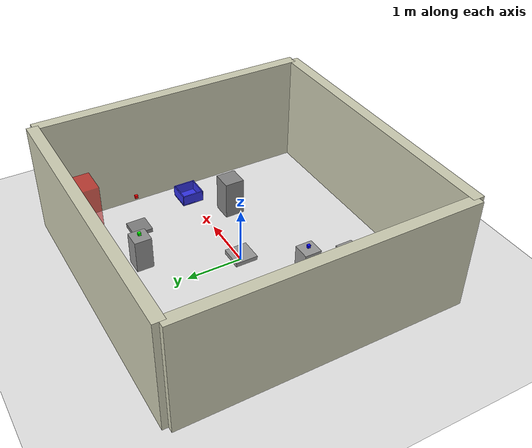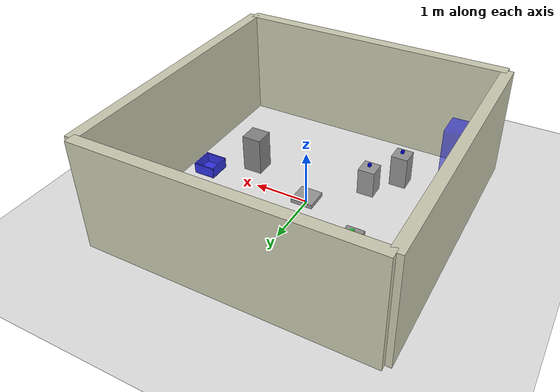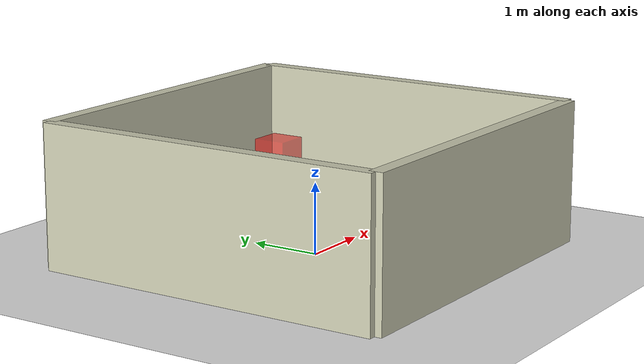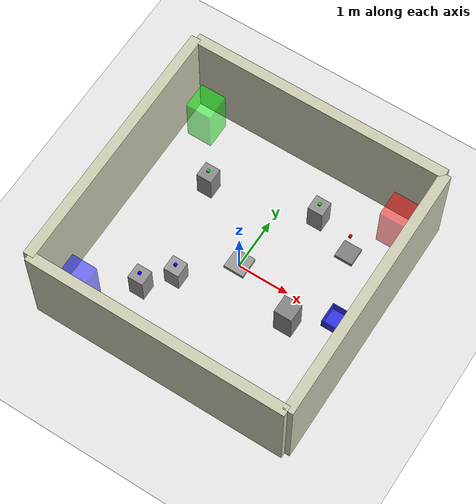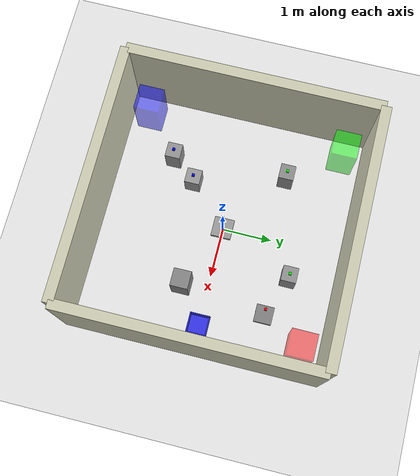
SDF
<?xml version="1.0" ?>
<sdf version="1.8">
  <world name="sorting_room">

    <!-- Physics -->
    <physics name="1ms" type="ignored">
      <max_step_size>0.001</max_step_size>
      <real_time_factor>1.0</real_time_factor>
    </physics>

    <plugin filename="gz-sim-physics-system" name="gz::sim::systems::Physics"></plugin>
    <plugin filename="gz-sim-user-commands-system" name="gz::sim::systems::UserCommands"></plugin>
    <plugin filename="gz-sim-scene-broadcaster-system" name="gz::sim::systems::SceneBroadcaster"></plugin>
    <plugin filename="gz-sim-sensors-system" name="gz::sim::systems::Sensors">
      <render_engine>ogre2</render_engine>
    </plugin>

    <!-- Lighting -->
    <light type="directional" name="sun">
      <cast_shadows>true</cast_shadows>
      <pose>0 0 10 0 0 0</pose>
      <diffuse>0.8 0.8 0.8 1</diffuse>
      <specular>0.2 0.2 0.2 1</specular>
      <direction>-0.5 0.1 -0.9</direction>
    </light>

    <!-- Ground -->
    <model name="ground_plane">
      <static>true</static>
      <link name="link">
        <collision name="collision">
          <geometry>
            <plane>
              <normal>0 0 1</normal>
              <size>100 100</size>
            </plane>
          </geometry>
        </collision>
        <visual name="visual">
          <geometry>
            <plane>
              <normal>0 0 1</normal>
              <size>100 100</size>
            </plane>
          </geometry>
          <material>
            <ambient>0.9 0.9 0.9 1</ambient>
            <diffuse>0.9 0.9 0.9 1</diffuse>
          </material>
        </visual>
      </link>
    </model>

    <!-- ROOM WALLS (5m x 5m room) -->

    <!-- North Wall -->
    <model name="wall_north">
      <pose>0 2.5 1.0 0 0 0</pose>
      <static>true</static>
      <link name="link">
        <collision name="collision">
          <geometry>
            <box><size>5.0 0.2 2.0</size></box>
          </geometry>
        </collision>
        <visual name="visual">
          <geometry>
            <box><size>5.0 0.2 2.0</size></box>
          </geometry>
          <material>
            <ambient>0.8 0.8 0.7 1</ambient>
            <diffuse>0.8 0.8 0.7 1</diffuse>
          </material>
        </visual>
      </link>
    </model>

    <!-- South Wall -->
    <model name="wall_south">
      <pose>0 -2.5 1.0 0 0 0</pose>
      <static>true</static>
      <link name="link">
        <collision name="collision">
          <geometry>
            <box><size>5.0 0.2 2.0</size></box>
          </geometry>
        </collision>
        <visual name="visual">
          <geometry>
            <box><size>5.0 0.2 2.0</size></box>
          </geometry>
          <material>
            <ambient>0.8 0.8 0.7 1</ambient>
            <diffuse>0.8 0.8 0.7 1</diffuse>
          </material>
        </visual>
      </link>
    </model>

    <!-- East Wall -->
    <model name="wall_east">
      <pose>2.5 0 1.0 0 0 0</pose>
      <static>true</static>
      <link name="link">
        <collision name="collision">
          <geometry>
            <box><size>0.2 5.0 2.0</size></box>
          </geometry>
        </collision>
        <visual name="visual">
          <geometry>
            <box><size>0.2 5.0 2.0</size></box>
          </geometry>
          <material>
            <ambient>0.8 0.8 0.7 1</ambient>
            <diffuse>0.8 0.8 0.7 1</diffuse>
          </material>
        </visual>
      </link>
    </model>

    <!-- West Wall -->
    <model name="wall_west">
      <pose>-2.5 0 1.0 0 0 0</pose>
      <static>true</static>
      <link name="link">
        <collision name="collision">
          <geometry>
            <box><size>0.2 5.0 2.0</size></box>
          </geometry>
        </collision>
        <visual name="visual">
          <geometry>
            <box><size>0.2 5.0 2.0</size></box>
          </geometry>
          <material>
            <ambient>0.8 0.8 0.7 1</ambient>
            <diffuse>0.8 0.8 0.7 1</diffuse>
          </material>
        </visual>
      </link>
    </model>

    <!-- RED BASKET (Collection point for red boxes) -->
    <model name="red_basket">
      <pose>2.0 2.0 0.5 0 0 0</pose>
      <static>true</static>
      <link name="link">
        <collision name="collision">
          <geometry>
            <box><size>0.5 0.5 1.0</size></box>
          </geometry>
        </collision>
        <visual name="visual">
          <geometry>
            <box><size>0.5 0.5 1.0</size></box>
          </geometry>
          <material>
            <ambient>1 0 0 0.5</ambient>
            <diffuse>1 0 0 0.5</diffuse>
          </material>
        </visual>
      </link>
    </model>

    <!-- GREEN BASKET -->
    <model name="green_basket">
      <pose>-2.0 2.0 0.5 0 0 0</pose>
      <static>true</static>
      <link name="link">
        <collision name="collision">
          <geometry>
            <box><size>0.5 0.5 1.0</size></box>
          </geometry>
        </collision>
        <visual name="visual">
          <geometry>
            <box><size>0.5 0.5 1.0</size></box>
          </geometry>
          <material>
            <ambient>0 1 0 0.5</ambient>
            <diffuse>0 1 0 0.5</diffuse>
          </material>
        </visual>
      </link>
    </model>

    <!-- BLUE BASKET -->
    <model name="blue_basket">
      <pose>-2.0 -2.0 0.5 0 0 0</pose>
      <static>true</static>
      <link name="link">
        <collision name="collision">
          <geometry>
            <box><size>0.5 0.5 1.0</size></box>
          </geometry>
        </collision>
        <visual name="visual">
          <geometry>
            <box><size>0.5 0.5 1.0</size></box>
          </geometry>
          <material>
            <ambient>0 0 1 0.5</ambient>
            <diffuse>0 0 1 0.5</diffuse>
          </material>
        </visual>
      </link>
    </model>

    <!-- ==================== OBSTACLES ==================== -->

    <!-- Center obstacle (tallest - 0.8m high) -->
    <model name="obstacle_center">
      <pose>0.0 0.0 0.1 0 0 0</pose>
      <static>true</static>
      <link name="link">
        <collision name="collision">
          <geometry>
            <box><size>0.4 0.4 0.075</size></box>
          </geometry>
        </collision>
        <visual name="visual">
          <geometry>
            <box><size>0.4 0.4 0.075</size></box>
          </geometry>
          <material>
            <ambient>0.6 0.6 0.6 1</ambient>
            <diffuse>0.6 0.6 0.6 1</diffuse>
          </material>
        </visual>
      </link>
    </model>

    <!-- Obstacle 2 - Near red basket -->
    <model name="obstacle_2">
      <pose>1.5 1.2 0.1 0 0 0</pose>
      <static>true</static>
      <link name="link">
        <collision name="collision">
          <geometry>
            <box><size>0.35 0.35 0.075</size></box>
          </geometry>
        </collision>
        <visual name="visual">
          <geometry>
            <box><size>0.35 0.35 0.075</size></box>
          </geometry>
          <material>
            <ambient>0.5 0.5 0.5 1</ambient>
            <diffuse>0.5 0.5 0.5 1</diffuse>
          </material>
        </visual>
      </link>
    </model>

    <!-- Obstacle 3 - Near green basket -->
    <model name="obstacle_3">
      <pose>-1.3 1.0 0.3 0 0 0</pose>
      <static>true</static>
      <link name="link">
        <collision name="collision">
          <geometry>
            <box><size>0.3 0.3 0.6</size></box>
          </geometry>
        </collision>
        <visual name="visual">
          <geometry>
            <box><size>0.3 0.3 0.6</size></box>
          </geometry>
          <material>
            <ambient>0.55 0.55 0.55 1</ambient>
            <diffuse>0.55 0.55 0.55 1</diffuse>
          </material>
        </visual>
      </link>
    </model>

    <!-- Obstacle 4 - Near blue basket -->
    <model name="obstacle_4">
      <pose>-1.2 -1.3 0.3 0 0 0</pose>
      <static>true</static>
      <link name="link">
        <collision name="collision">
          <geometry>
            <box><size>0.3 0.3 0.6</size></box>
          </geometry>
        </collision>
        <visual name="visual">
          <geometry>
            <box><size>0.3 0.3 0.6</size></box>
          </geometry>
          <material>
            <ambient>0.58 0.58 0.58 1</ambient>
            <diffuse>0.58 0.58 0.58 1</diffuse>
          </material>
        </visual>
      </link>
    </model>

    <!-- Obstacle 5 - Middle right -->
    <model name="obstacle_5">
      <pose>1.3 -0.5 0.35 0 0 0</pose>
      <static>true</static>
      <link name="link">
        <collision name="collision">
          <geometry>
            <box><size>0.35 0.35 0.7</size></box>
          </geometry>
        </collision>
        <visual name="visual">
          <geometry>
            <box><size>0.35 0.35 0.7</size></box>
          </geometry>
          <material>
            <ambient>0.52 0.52 0.52 1</ambient>
            <diffuse>0.52 0.52 0.52 1</diffuse>
          </material>
        </visual>
      </link>
    </model>

    <!-- Obstacle 6 - Middle left -->
    <model name="obstacle_6">
      <pose>-0.8 -0.8 0.25 0 0 0</pose>
      <static>true</static>
      <link name="link">
        <collision name="collision">
          <geometry>
            <box><size>0.3 0.3 0.5</size></box>
          </geometry>
        </collision>
        <visual name="visual">
          <geometry>
            <box><size>0.3 0.3 0.5</size></box>
          </geometry>
          <material>
            <ambient>0.6 0.6 0.6 1</ambient>
            <diffuse>0.6 0.6 0.6 1</diffuse>
          </material>
        </visual>
      </link>
    </model>

    <!-- Obstacle 7 - Near entrance area -->
    <model name="obstacle_7">
      <pose>0.7 1.5 0.3 0 0 0</pose>
      <static>true</static>
      <link name="link">
        <collision name="collision">
          <geometry>
            <box><size>0.3 0.3 0.6</size></box>
          </geometry>
        </collision>
        <visual name="visual">
          <geometry>
            <box><size>0.3 0.3 0.6</size></box>
          </geometry>
          <material>
            <ambient>0.57 0.57 0.57 1</ambient>
            <diffuse>0.57 0.57 0.57 1</diffuse>
          </material>
        </visual>
      </link>
    </model>

    <!-- ==================== RED BOXES ON OBSTACLES ==================== -->

    <!-- Red box 1 - ON TOP OF CENTER OBSTACLE -->
    <model name="red_box_1">
      <static>false</static>
      <pose>0.0 0.0 0.9 0 0 0</pose>
      <static>false</static>
      <link name="link">
        <inertial>
          <mass>0.1</mass>
          <inertia>
            <ixx>0.00017</ixx>
            <iyy>0.00017</iyy>
            <izz>0.00017</izz>
          </inertia>
        </inertial>
        <collision name="collision">
          <geometry>
            <box><size>0.05 0.05 0.05</size></box>
          </geometry>
        </collision>
        <visual name="visual">
          <geometry>
            <box><size>0.05 0.05 0.05</size></box>
          </geometry>
          <material>
            <ambient>1 0 0 1</ambient>
            <diffuse>1 0 0 1</diffuse>
          </material>
        </visual>
      </link>
    </model>

    <!-- Red box 2 - ON TOP OF OBSTACLE 2 (near red basket) -->
    <model name="red_box_2">
      <static>false</static>
      <pose>1.5 1.2 0.775 0 0 0</pose>
      <static>false</static>
      <link name="link">
        <inertial>
          <mass>0.1</mass>
          <inertia>
            <ixx>0.00017</ixx>
            <iyy>0.00017</iyy>
            <izz>0.00017</izz>
          </inertia>
        </inertial>
        <collision name="collision">
          <geometry>
            <box><size>0.05 0.05 0.05</size></box>
          </geometry>
        </collision>
        <visual name="visual">
          <geometry>
            <box><size>0.05 0.05 0.05</size></box>
          </geometry>
          <material>
            <ambient>1 0 0 1</ambient>
            <diffuse>1 0 0 1</diffuse>
          </material>
        </visual>
      </link>
    </model>

    <!-- ==================== GREEN BOXES ==================== -->

    <!-- ==================== ADDITIONAL COLOURED BOXES ==================== -->

    <!-- Blue box 1 — on obstacle_6 -->
    <model name="blue_box_1">
      <static>false</static>
      <pose>-0.8 -0.8 0.55 0 0 0</pose>
      <static>true</static>
      <link name="link">

        <inertial>
          <mass>0.1</mass>
          <inertia>
            <ixx>0.00017</ixx><ixy>0</ixy><ixz>0</ixz>
            <iyy>0.00017</iyy><iyz>0</iyz>
            <izz>0.00017</izz>
          </inertia>
        </inertial>
        <collision name="collision">
          <geometry><box><size>0.05 0.05 0.05</size></box></geometry>
        </collision>
        <visual name="visual">
          <geometry><box><size>0.05 0.05 0.05</size></box></geometry>
          <material><ambient>0 0 1 1</ambient><diffuse>0 0 1 1</diffuse></material>
        </visual>
      </link>
    </model>

    <!-- Blue box 2 — on obstacle_4 -->
    <model name="blue_box_2">
      <static>false</static>
      <pose>-1.2 -1.3 0.65 0 0 0</pose>
      <static>true</static>
      <link name="link">

        <inertial>
          <mass>0.1</mass>
          <inertia>
            <ixx>0.00017</ixx><ixy>0</ixy><ixz>0</ixz>
            <iyy>0.00017</iyy><iyz>0</iyz>
            <izz>0.00017</izz>
          </inertia>
        </inertial>
        <collision name="collision">
          <geometry><box><size>0.05 0.05 0.05</size></box></geometry>
        </collision>
        <visual name="visual">
          <geometry><box><size>0.05 0.05 0.05</size></box></geometry>
          <material><ambient>0 0 1 1</ambient><diffuse>0 0 1 1</diffuse></material>
        </visual>
      </link>
    </model>

    <!-- Green box 1 — on obstacle_3 -->
    <model name="green_box_1">
      <static>false</static>
      <pose>-1.3 1.0 0.65 0 0 0</pose>
      <static>true</static>
      <link name="link">

        <inertial>
          <mass>0.1</mass>
          <inertia>
            <ixx>0.00017</ixx><ixy>0</ixy><ixz>0</ixz>
            <iyy>0.00017</iyy><iyz>0</iyz>
            <izz>0.00017</izz>
          </inertia>
        </inertial>
        <collision name="collision">
          <geometry><box><size>0.05 0.05 0.05</size></box></geometry>
        </collision>
        <visual name="visual">
          <geometry><box><size>0.05 0.05 0.05</size></box></geometry>
          <material><ambient>0 1 0 1</ambient><diffuse>0 1 0 1</diffuse></material>
        </visual>
      </link>
    </model>

    <!-- Green box 2 — on obstacle_7 -->
    <model name="green_box_2">
      <static>false</static>
      <pose>0.7 1.5 0.65 0 0 0</pose>
      <static>true</static>
      <link name="link">

        <inertial>
          <mass>0.1</mass>
          <inertia>
            <ixx>0.00017</ixx><ixy>0</ixy><ixz>0</ixz>
            <iyy>0.00017</iyy><iyz>0</iyz>
            <izz>0.00017</izz>
          </inertia>
        </inertial>
        <collision name="collision">
          <geometry><box><size>0.05 0.05 0.05</size></box></geometry>
        </collision>
        <visual name="visual">
          <geometry><box><size>0.05 0.05 0.05</size></box></geometry>
          <material><ambient>0 1 0 1</ambient><diffuse>0 1 0 1</diffuse></material>
        </visual>
      </link>
    </model>

    <!-- BIN — drop target -->
    <model name="bin">
      <static>true</static>
      <pose>2.0 0.0 0 0 0 0</pose>
      <link name="floor">
        <pose>0 0 0.01 0 0 0</pose>
        <collision name="col"><geometry><box><size>0.4 0.4 0.02</size></box></geometry></collision>
        <visual name="vis">
          <geometry><box><size>0.4 0.4 0.02</size></box></geometry>
          <material><ambient>0.2 0.2 0.8 1</ambient><diffuse>0.2 0.2 0.9 1</diffuse></material>
        </visual>
      </link>
      <link name="wall_front">
        <pose>0 -0.19 0.1 0 0 0</pose>
        <collision name="col"><geometry><box><size>0.4 0.02 0.2</size></box></geometry></collision>
        <visual name="vis">
          <geometry><box><size>0.4 0.02 0.2</size></box></geometry>
          <material><ambient>0.2 0.2 0.8 1</ambient><diffuse>0.2 0.2 0.9 1</diffuse></material>
        </visual>
      </link>
      <link name="wall_back">
        <pose>0 0.19 0.1 0 0 0</pose>
        <collision name="col"><geometry><box><size>0.4 0.02 0.2</size></box></geometry></collision>
        <visual name="vis">
          <geometry><box><size>0.4 0.02 0.2</size></box></geometry>
          <material><ambient>0.2 0.2 0.8 1</ambient><diffuse>0.2 0.2 0.9 1</diffuse></material>
        </visual>
      </link>
      <link name="wall_left">
        <pose>-0.19 0 0.1 0 0 0</pose>
        <collision name="col"><geometry><box><size>0.02 0.4 0.2</size></box></geometry></collision>
        <visual name="vis">
          <geometry><box><size>0.02 0.4 0.2</size></box></geometry>
          <material><ambient>0.2 0.2 0.8 1</ambient><diffuse>0.2 0.2 0.9 1</diffuse></material>
        </visual>
      </link>
      <link name="wall_right">
        <pose>0.19 0 0.1 0 0 0</pose>
        <collision name="col"><geometry><box><size>0.02 0.4 0.2</size></box></geometry></collision>
        <visual name="vis">
          <geometry><box><size>0.02 0.4 0.2</size></box></geometry>
          <material><ambient>0.2 0.2 0.8 1</ambient><diffuse>0.2 0.2 0.9 1</diffuse></material>
        </visual>
      </link>
    </model>

  </world>
</sdf>
